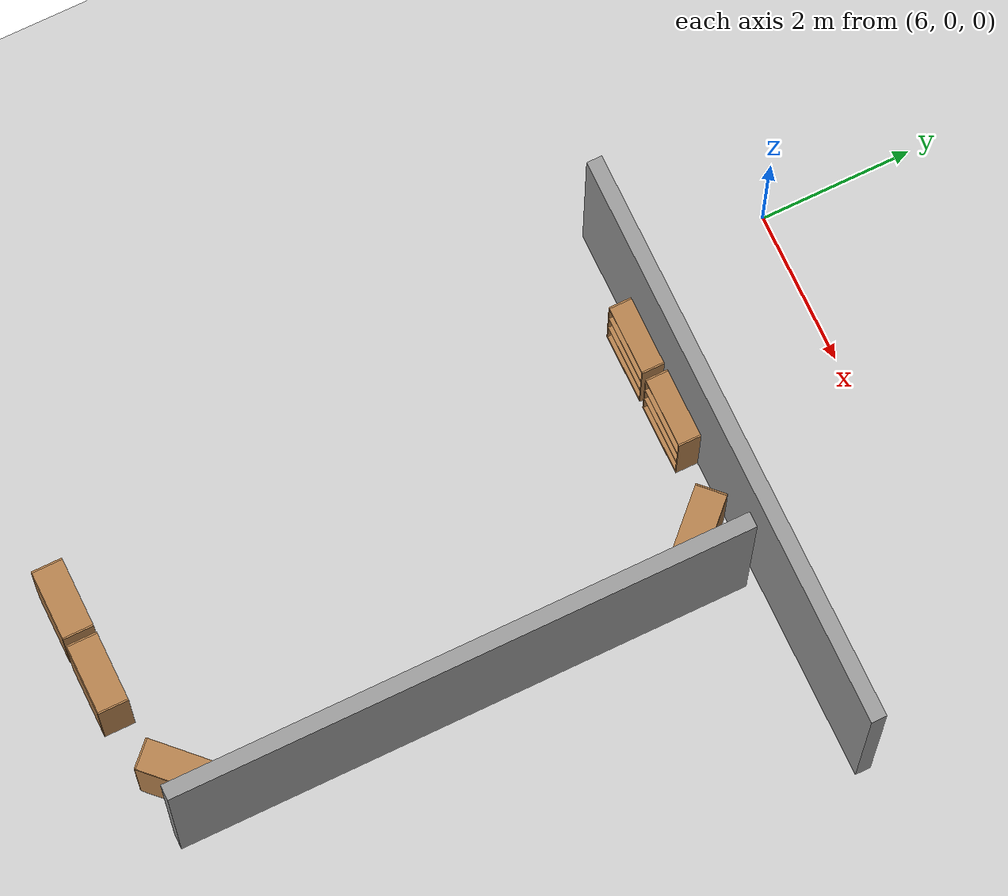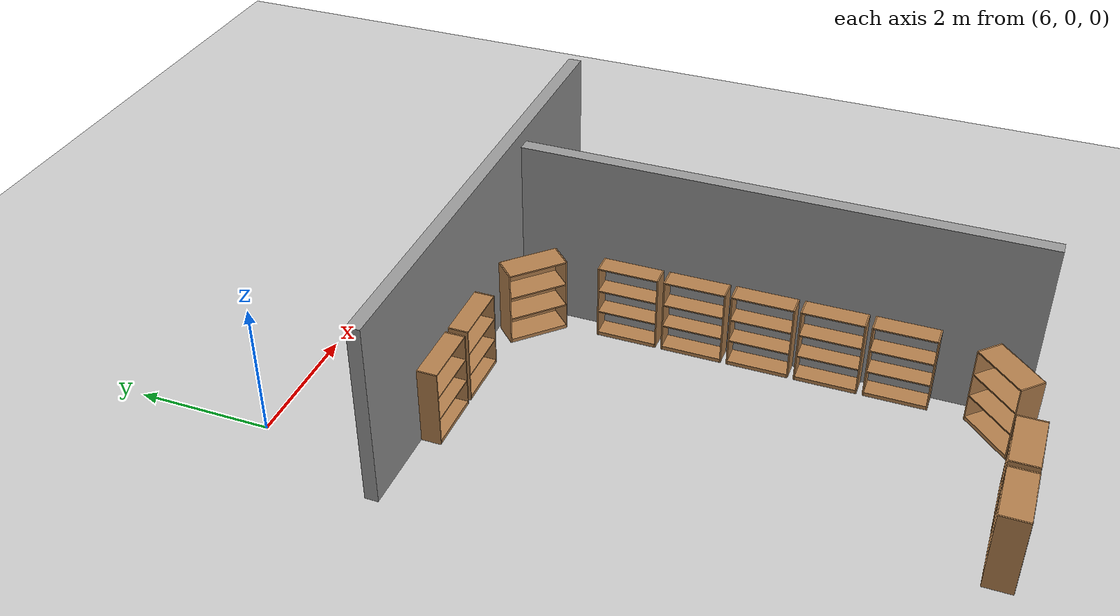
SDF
<sdf version="1.4">
 <world name="default">
  <model name="ground_plane">
   <static>1</static>
   <link name="link">
    <collision name="collision">
     <geometry><plane><normal>0 0 1</normal><size>100 100</size></plane></geometry>
     <surface><friction><ode><mu>100</mu><mu2>50</mu2></ode></friction></surface>
    </collision>
    <visual name="visual">
     <cast_shadows>0</cast_shadows>
     <geometry><plane><normal>0 0 1</normal><size>100 100</size></plane></geometry>
     <material>
      <script><uri>file://media/materials/scripts/gazebo.material</uri><name>Gazebo/Grey</name></script>
     </material>
    </visual>
    <velocity_decay><linear>0</linear><angular>0</angular></velocity_decay>
   </link>
  </model>
  <model name="grey_wall_2">
   <static>1</static>
   <link name="link">
    <pose>0 0 1.4 0 -0 0</pose>
    <collision name="collision"><geometry><box><size>7.5 0.2 2.8</size></box></geometry></collision>
    <visual name="visual">
     <cast_shadows>0</cast_shadows>
     <geometry><box><size>7.5 0.2 2.8</size></box></geometry>
     <material>
      <script>
       <uri>model://grey_wall/materials/scripts</uri>
       <uri>model://grey_wall/materials/textures</uri>
       <name>vrc/grey_wall</name>
      </script>
     </material>
    </visual>
    <velocity_decay><linear>0</linear><angular>0</angular></velocity_decay>
   </link>
   <pose>9 -2 0 0 -0 0</pose>
  </model>
  <model name="grey_wall_3">
   <static>1</static>
   <link name="link">
    <pose>0 0 1.4 0 -0 0</pose>
    <collision name="collision"><geometry><box><size>7.5 0.2 2.8</size></box></geometry></collision>
    <visual name="visual">
     <cast_shadows>0</cast_shadows>
     <geometry><box><size>7.5 0.2 2.8</size></box></geometry>
     <material>
      <script>
       <uri>model://grey_wall/materials/scripts</uri>
       <uri>model://grey_wall/materials/textures</uri>
       <name>vrc/grey_wall</name>
      </script>
     </material>
    </visual>
    <velocity_decay><linear>0</linear><angular>0</angular></velocity_decay>
   </link>
   <pose>10 -6 0 0 0 -1.5708</pose>
  </model>
  <model name="bookshelf_4">
   <static>1</static>
   <link name="link">
    <inertial><mass>1</mass></inertial>
    <collision name="back">
     <pose>0 0.005 0.6 0 -0 0</pose>
     <geometry><box><size>0.9 0.01 1.2</size></box></geometry>
    </collision>
    <visual name="visual1">
     <pose>0 0.005 0.6 0 -0 0</pose>
     <geometry><box><size>0.9 0.01 1.2</size></box></geometry>
     <material>
      <script><uri>file://media/materials/scripts/gazebo.material</uri><name>Gazebo/Wood</name></script>
     </material>
    </visual>
    <collision name="left_side">
     <pose>0.45 -0.195 0.6 0 -0 0</pose>
     <geometry><box><size>0.02 0.4 1.2</size></box></geometry>
    </collision>
    <visual name="visual2">
     <pose>0.45 -0.195 0.6 0 -0 0</pose>
     <geometry><box><size>0.02 0.4 1.2</size></box></geometry>
     <material>
      <script><uri>file://media/materials/scripts/gazebo.material</uri><name>Gazebo/Wood</name></script>
     </material>
    </visual>
    <collision name="right_side">
     <pose>-0.45 -0.195 0.6 0 -0 0</pose>
     <geometry><box><size>0.02 0.4 1.2</size></box></geometry>
    </collision>
    <visual name="visual3">
     <pose>-0.45 -0.195 0.6 0 -0 0</pose>
     <geometry><box><size>0.02 0.4 1.2</size></box></geometry>
     <material>
      <script><uri>file://media/materials/scripts/gazebo.material</uri><name>Gazebo/Wood</name></script>
     </material>
    </visual>
    <collision name="bottom">
     <pose>0 -0.195 0.03 0 -0 0</pose>
     <geometry><box><size>0.88 0.4 0.06</size></box></geometry>
    </collision>
    <visual name="visual4">
     <pose>0 -0.195 0.03 0 -0 0</pose>
     <geometry><box><size>0.88 0.4 0.06</size></box></geometry>
     <material>
      <script><uri>file://media/materials/scripts/gazebo.material</uri><name>Gazebo/Wood</name></script>
     </material>
    </visual>
    <collision name="top">
     <pose>0 -0.195 1.19 0 -0 0</pose>
     <geometry><box><size>0.88 0.4 0.02</size></box></geometry>
    </collision>
    <visual name="visual5">
     <pose>0 -0.195 1.19 0 -0 0</pose>
     <geometry><box><size>0.88 0.4 0.02</size></box></geometry>
     <material>
      <script><uri>file://media/materials/scripts/gazebo.material</uri><name>Gazebo/Wood</name></script>
     </material>
    </visual>
    <collision name="low_shelf">
     <pose>0 -0.195 0.43 0 -0 0</pose>
     <geometry><box><size>0.88 0.4 0.02</size></box></geometry>
    </collision>
    <visual name="visual6">
     <pose>0 -0.195 0.43 0 -0 0</pose>
     <geometry><box><size>0.88 0.4 0.02</size></box></geometry>
     <material>
      <script><uri>file://media/materials/scripts/gazebo.material</uri><name>Gazebo/Wood</name></script>
     </material>
    </visual>
    <collision name="high_shelf">
     <pose>0 -0.195 0.8 0 -0 0</pose>
     <geometry><box><size>0.88 0.4 0.02</size></box></geometry>
    </collision>
    <visual name="visual7">
     <pose>0 -0.195 0.8 0 -0 0</pose>
     <geometry><box><size>0.88 0.4 0.02</size></box></geometry>
     <material>
      <script><uri>file://media/materials/scripts/gazebo.material</uri><name>Gazebo/Wood</name></script>
     </material>
    </visual>
    <velocity_decay><linear>0</linear><angular>0</angular></velocity_decay>
   </link>
   <pose>9.55807 -9.56504 0 0 0 -2.35619</pose>
  </model>
  <model name="bookshelf_5">
   <static>1</static>
   <link name="link">
    <inertial><mass>1</mass></inertial>
    <collision name="back">
     <pose>0 0.005 0.6 0 -0 0</pose>
     <geometry><box><size>0.9 0.01 1.2</size></box></geometry>
    </collision>
    <visual name="visual1">
     <pose>0 0.005 0.6 0 -0 0</pose>
     <geometry><box><size>0.9 0.01 1.2</size></box></geometry>
     <material>
      <script><uri>file://media/materials/scripts/gazebo.material</uri><name>Gazebo/Wood</name></script>
     </material>
    </visual>
    <collision name="left_side">
     <pose>0.45 -0.195 0.6 0 -0 0</pose>
     <geometry><box><size>0.02 0.4 1.2</size></box></geometry>
    </collision>
    <visual name="visual2">
     <pose>0.45 -0.195 0.6 0 -0 0</pose>
     <geometry><box><size>0.02 0.4 1.2</size></box></geometry>
     <material>
      <script><uri>file://media/materials/scripts/gazebo.material</uri><name>Gazebo/Wood</name></script>
     </material>
    </visual>
    <collision name="right_side">
     <pose>-0.45 -0.195 0.6 0 -0 0</pose>
     <geometry><box><size>0.02 0.4 1.2</size></box></geometry>
    </collision>
    <visual name="visual3">
     <pose>-0.45 -0.195 0.6 0 -0 0</pose>
     <geometry><box><size>0.02 0.4 1.2</size></box></geometry>
     <material>
      <script><uri>file://media/materials/scripts/gazebo.material</uri><name>Gazebo/Wood</name></script>
     </material>
    </visual>
    <collision name="bottom">
     <pose>0 -0.195 0.03 0 -0 0</pose>
     <geometry><box><size>0.88 0.4 0.06</size></box></geometry>
    </collision>
    <visual name="visual4">
     <pose>0 -0.195 0.03 0 -0 0</pose>
     <geometry><box><size>0.88 0.4 0.06</size></box></geometry>
     <material>
      <script><uri>file://media/materials/scripts/gazebo.material</uri><name>Gazebo/Wood</name></script>
     </material>
    </visual>
    <collision name="top">
     <pose>0 -0.195 1.19 0 -0 0</pose>
     <geometry><box><size>0.88 0.4 0.02</size></box></geometry>
    </collision>
    <visual name="visual5">
     <pose>0 -0.195 1.19 0 -0 0</pose>
     <geometry><box><size>0.88 0.4 0.02</size></box></geometry>
     <material>
      <script><uri>file://media/materials/scripts/gazebo.material</uri><name>Gazebo/Wood</name></script>
     </material>
    </visual>
    <collision name="low_shelf">
     <pose>0 -0.195 0.43 0 -0 0</pose>
     <geometry><box><size>0.88 0.4 0.02</size></box></geometry>
    </collision>
    <visual name="visual6">
     <pose>0 -0.195 0.43 0 -0 0</pose>
     <geometry><box><size>0.88 0.4 0.02</size></box></geometry>
     <material>
      <script><uri>file://media/materials/scripts/gazebo.material</uri><name>Gazebo/Wood</name></script>
     </material>
    </visual>
    <collision name="high_shelf">
     <pose>0 -0.195 0.8 0 -0 0</pose>
     <geometry><box><size>0.88 0.4 0.02</size></box></geometry>
    </collision>
    <visual name="visual7">
     <pose>0 -0.195 0.8 0 -0 0</pose>
     <geometry><box><size>0.88 0.4 0.02</size></box></geometry>
     <material>
      <script><uri>file://media/materials/scripts/gazebo.material</uri><name>Gazebo/Wood</name></script>
     </material>
    </visual>
    <velocity_decay><linear>0</linear><angular>0</angular></velocity_decay>
   </link>
   <pose>7 -10 0 0 -0 3.14159</pose>
  </model>
  <model name="bookshelf_6">
   <static>1</static>
   <link name="link">
    <inertial><mass>1</mass></inertial>
    <collision name="back">
     <pose>0 0.005 0.6 0 -0 0</pose>
     <geometry><box><size>0.9 0.01 1.2</size></box></geometry>
    </collision>
    <visual name="visual1">
     <pose>0 0.005 0.6 0 -0 0</pose>
     <geometry><box><size>0.9 0.01 1.2</size></box></geometry>
     <material>
      <script><uri>file://media/materials/scripts/gazebo.material</uri><name>Gazebo/Wood</name></script>
     </material>
    </visual>
    <collision name="left_side">
     <pose>0.45 -0.195 0.6 0 -0 0</pose>
     <geometry><box><size>0.02 0.4 1.2</size></box></geometry>
    </collision>
    <visual name="visual2">
     <pose>0.45 -0.195 0.6 0 -0 0</pose>
     <geometry><box><size>0.02 0.4 1.2</size></box></geometry>
     <material>
      <script><uri>file://media/materials/scripts/gazebo.material</uri><name>Gazebo/Wood</name></script>
     </material>
    </visual>
    <collision name="right_side">
     <pose>-0.45 -0.195 0.6 0 -0 0</pose>
     <geometry><box><size>0.02 0.4 1.2</size></box></geometry>
    </collision>
    <visual name="visual3">
     <pose>-0.45 -0.195 0.6 0 -0 0</pose>
     <geometry><box><size>0.02 0.4 1.2</size></box></geometry>
     <material>
      <script><uri>file://media/materials/scripts/gazebo.material</uri><name>Gazebo/Wood</name></script>
     </material>
    </visual>
    <collision name="bottom">
     <pose>0 -0.195 0.03 0 -0 0</pose>
     <geometry><box><size>0.88 0.4 0.06</size></box></geometry>
    </collision>
    <visual name="visual4">
     <pose>0 -0.195 0.03 0 -0 0</pose>
     <geometry><box><size>0.88 0.4 0.06</size></box></geometry>
     <material>
      <script><uri>file://media/materials/scripts/gazebo.material</uri><name>Gazebo/Wood</name></script>
     </material>
    </visual>
    <collision name="top">
     <pose>0 -0.195 1.19 0 -0 0</pose>
     <geometry><box><size>0.88 0.4 0.02</size></box></geometry>
    </collision>
    <visual name="visual5">
     <pose>0 -0.195 1.19 0 -0 0</pose>
     <geometry><box><size>0.88 0.4 0.02</size></box></geometry>
     <material>
      <script><uri>file://media/materials/scripts/gazebo.material</uri><name>Gazebo/Wood</name></script>
     </material>
    </visual>
    <collision name="low_shelf">
     <pose>0 -0.195 0.43 0 -0 0</pose>
     <geometry><box><size>0.88 0.4 0.02</size></box></geometry>
    </collision>
    <visual name="visual6">
     <pose>0 -0.195 0.43 0 -0 0</pose>
     <geometry><box><size>0.88 0.4 0.02</size></box></geometry>
     <material>
      <script><uri>file://media/materials/scripts/gazebo.material</uri><name>Gazebo/Wood</name></script>
     </material>
    </visual>
    <collision name="high_shelf">
     <pose>0 -0.195 0.8 0 -0 0</pose>
     <geometry><box><size>0.88 0.4 0.02</size></box></geometry>
    </collision>
    <visual name="visual7">
     <pose>0 -0.195 0.8 0 -0 0</pose>
     <geometry><box><size>0.88 0.4 0.02</size></box></geometry>
     <material>
      <script><uri>file://media/materials/scripts/gazebo.material</uri><name>Gazebo/Wood</name></script>
     </material>
    </visual>
    <velocity_decay><linear>0</linear><angular>0</angular></velocity_decay>
   </link>
   <pose>8 -10 0 0 -0 3.14159</pose>
  </model>
  <model name="bookshelf_7">
   <static>1</static>
   <link name="link">
    <inertial><mass>1</mass></inertial>
    <collision name="back">
     <pose>0 0.005 0.6 0 -0 0</pose>
     <geometry><box><size>0.9 0.01 1.2</size></box></geometry>
    </collision>
    <visual name="visual1">
     <pose>0 0.005 0.6 0 -0 0</pose>
     <geometry><box><size>0.9 0.01 1.2</size></box></geometry>
     <material>
      <script><uri>file://media/materials/scripts/gazebo.material</uri><name>Gazebo/Wood</name></script>
     </material>
    </visual>
    <collision name="left_side">
     <pose>0.45 -0.195 0.6 0 -0 0</pose>
     <geometry><box><size>0.02 0.4 1.2</size></box></geometry>
    </collision>
    <visual name="visual2">
     <pose>0.45 -0.195 0.6 0 -0 0</pose>
     <geometry><box><size>0.02 0.4 1.2</size></box></geometry>
     <material>
      <script><uri>file://media/materials/scripts/gazebo.material</uri><name>Gazebo/Wood</name></script>
     </material>
    </visual>
    <collision name="right_side">
     <pose>-0.45 -0.195 0.6 0 -0 0</pose>
     <geometry><box><size>0.02 0.4 1.2</size></box></geometry>
    </collision>
    <visual name="visual3">
     <pose>-0.45 -0.195 0.6 0 -0 0</pose>
     <geometry><box><size>0.02 0.4 1.2</size></box></geometry>
     <material>
      <script><uri>file://media/materials/scripts/gazebo.material</uri><name>Gazebo/Wood</name></script>
     </material>
    </visual>
    <collision name="bottom">
     <pose>0 -0.195 0.03 0 -0 0</pose>
     <geometry><box><size>0.88 0.4 0.06</size></box></geometry>
    </collision>
    <visual name="visual4">
     <pose>0 -0.195 0.03 0 -0 0</pose>
     <geometry><box><size>0.88 0.4 0.06</size></box></geometry>
     <material>
      <script><uri>file://media/materials/scripts/gazebo.material</uri><name>Gazebo/Wood</name></script>
     </material>
    </visual>
    <collision name="top">
     <pose>0 -0.195 1.19 0 -0 0</pose>
     <geometry><box><size>0.88 0.4 0.02</size></box></geometry>
    </collision>
    <visual name="visual5">
     <pose>0 -0.195 1.19 0 -0 0</pose>
     <geometry><box><size>0.88 0.4 0.02</size></box></geometry>
     <material>
      <script><uri>file://media/materials/scripts/gazebo.material</uri><name>Gazebo/Wood</name></script>
     </material>
    </visual>
    <collision name="low_shelf">
     <pose>0 -0.195 0.43 0 -0 0</pose>
     <geometry><box><size>0.88 0.4 0.02</size></box></geometry>
    </collision>
    <visual name="visual6">
     <pose>0 -0.195 0.43 0 -0 0</pose>
     <geometry><box><size>0.88 0.4 0.02</size></box></geometry>
     <material>
      <script><uri>file://media/materials/scripts/gazebo.material</uri><name>Gazebo/Wood</name></script>
     </material>
    </visual>
    <collision name="high_shelf">
     <pose>0 -0.195 0.8 0 -0 0</pose>
     <geometry><box><size>0.88 0.4 0.02</size></box></geometry>
    </collision>
    <visual name="visual7">
     <pose>0 -0.195 0.8 0 -0 0</pose>
     <geometry><box><size>0.88 0.4 0.02</size></box></geometry>
     <material>
      <script><uri>file://media/materials/scripts/gazebo.material</uri><name>Gazebo/Wood</name></script>
     </material>
    </visual>
    <velocity_decay><linear>0</linear><angular>0</angular></velocity_decay>
   </link>
   <pose>7 -2 0 0 -0 0</pose>
  </model>
  <model name="bookshelf_8">
   <static>1</static>
   <link name="link">
    <inertial><mass>1</mass></inertial>
    <collision name="back">
     <pose>0 0.005 0.6 0 -0 0</pose>
     <geometry><box><size>0.9 0.01 1.2</size></box></geometry>
    </collision>
    <visual name="visual1">
     <pose>0 0.005 0.6 0 -0 0</pose>
     <geometry><box><size>0.9 0.01 1.2</size></box></geometry>
     <material>
      <script><uri>file://media/materials/scripts/gazebo.material</uri><name>Gazebo/Wood</name></script>
     </material>
    </visual>
    <collision name="left_side">
     <pose>0.45 -0.195 0.6 0 -0 0</pose>
     <geometry><box><size>0.02 0.4 1.2</size></box></geometry>
    </collision>
    <visual name="visual2">
     <pose>0.45 -0.195 0.6 0 -0 0</pose>
     <geometry><box><size>0.02 0.4 1.2</size></box></geometry>
     <material>
      <script><uri>file://media/materials/scripts/gazebo.material</uri><name>Gazebo/Wood</name></script>
     </material>
    </visual>
    <collision name="right_side">
     <pose>-0.45 -0.195 0.6 0 -0 0</pose>
     <geometry><box><size>0.02 0.4 1.2</size></box></geometry>
    </collision>
    <visual name="visual3">
     <pose>-0.45 -0.195 0.6 0 -0 0</pose>
     <geometry><box><size>0.02 0.4 1.2</size></box></geometry>
     <material>
      <script><uri>file://media/materials/scripts/gazebo.material</uri><name>Gazebo/Wood</name></script>
     </material>
    </visual>
    <collision name="bottom">
     <pose>0 -0.195 0.03 0 -0 0</pose>
     <geometry><box><size>0.88 0.4 0.06</size></box></geometry>
    </collision>
    <visual name="visual4">
     <pose>0 -0.195 0.03 0 -0 0</pose>
     <geometry><box><size>0.88 0.4 0.06</size></box></geometry>
     <material>
      <script><uri>file://media/materials/scripts/gazebo.material</uri><name>Gazebo/Wood</name></script>
     </material>
    </visual>
    <collision name="top">
     <pose>0 -0.195 1.19 0 -0 0</pose>
     <geometry><box><size>0.88 0.4 0.02</size></box></geometry>
    </collision>
    <visual name="visual5">
     <pose>0 -0.195 1.19 0 -0 0</pose>
     <geometry><box><size>0.88 0.4 0.02</size></box></geometry>
     <material>
      <script><uri>file://media/materials/scripts/gazebo.material</uri><name>Gazebo/Wood</name></script>
     </material>
    </visual>
    <collision name="low_shelf">
     <pose>0 -0.195 0.43 0 -0 0</pose>
     <geometry><box><size>0.88 0.4 0.02</size></box></geometry>
    </collision>
    <visual name="visual6">
     <pose>0 -0.195 0.43 0 -0 0</pose>
     <geometry><box><size>0.88 0.4 0.02</size></box></geometry>
     <material>
      <script><uri>file://media/materials/scripts/gazebo.material</uri><name>Gazebo/Wood</name></script>
     </material>
    </visual>
    <collision name="high_shelf">
     <pose>0 -0.195 0.8 0 -0 0</pose>
     <geometry><box><size>0.88 0.4 0.02</size></box></geometry>
    </collision>
    <visual name="visual7">
     <pose>0 -0.195 0.8 0 -0 0</pose>
     <geometry><box><size>0.88 0.4 0.02</size></box></geometry>
     <material>
      <script><uri>file://media/materials/scripts/gazebo.material</uri><name>Gazebo/Wood</name></script>
     </material>
    </visual>
    <velocity_decay><linear>0</linear><angular>0</angular></velocity_decay>
   </link>
   <pose>8 -2 0 0 -0 0</pose>
  </model>
  <model name="bookshelf_9">
   <static>1</static>
   <link name="link">
    <inertial><mass>1</mass></inertial>
    <collision name="back">
     <pose>0 0.005 0.6 0 -0 0</pose>
     <geometry><box><size>0.9 0.01 1.2</size></box></geometry>
    </collision>
    <visual name="visual1">
     <pose>0 0.005 0.6 0 -0 0</pose>
     <geometry><box><size>0.9 0.01 1.2</size></box></geometry>
     <material>
      <script><uri>file://media/materials/scripts/gazebo.material</uri><name>Gazebo/Wood</name></script>
     </material>
    </visual>
    <collision name="left_side">
     <pose>0.45 -0.195 0.6 0 -0 0</pose>
     <geometry><box><size>0.02 0.4 1.2</size></box></geometry>
    </collision>
    <visual name="visual2">
     <pose>0.45 -0.195 0.6 0 -0 0</pose>
     <geometry><box><size>0.02 0.4 1.2</size></box></geometry>
     <material>
      <script><uri>file://media/materials/scripts/gazebo.material</uri><name>Gazebo/Wood</name></script>
     </material>
    </visual>
    <collision name="right_side">
     <pose>-0.45 -0.195 0.6 0 -0 0</pose>
     <geometry><box><size>0.02 0.4 1.2</size></box></geometry>
    </collision>
    <visual name="visual3">
     <pose>-0.45 -0.195 0.6 0 -0 0</pose>
     <geometry><box><size>0.02 0.4 1.2</size></box></geometry>
     <material>
      <script><uri>file://media/materials/scripts/gazebo.material</uri><name>Gazebo/Wood</name></script>
     </material>
    </visual>
    <collision name="bottom">
     <pose>0 -0.195 0.03 0 -0 0</pose>
     <geometry><box><size>0.88 0.4 0.06</size></box></geometry>
    </collision>
    <visual name="visual4">
     <pose>0 -0.195 0.03 0 -0 0</pose>
     <geometry><box><size>0.88 0.4 0.06</size></box></geometry>
     <material>
      <script><uri>file://media/materials/scripts/gazebo.material</uri><name>Gazebo/Wood</name></script>
     </material>
    </visual>
    <collision name="top">
     <pose>0 -0.195 1.19 0 -0 0</pose>
     <geometry><box><size>0.88 0.4 0.02</size></box></geometry>
    </collision>
    <visual name="visual5">
     <pose>0 -0.195 1.19 0 -0 0</pose>
     <geometry><box><size>0.88 0.4 0.02</size></box></geometry>
     <material>
      <script><uri>file://media/materials/scripts/gazebo.material</uri><name>Gazebo/Wood</name></script>
     </material>
    </visual>
    <collision name="low_shelf">
     <pose>0 -0.195 0.43 0 -0 0</pose>
     <geometry><box><size>0.88 0.4 0.02</size></box></geometry>
    </collision>
    <visual name="visual6">
     <pose>0 -0.195 0.43 0 -0 0</pose>
     <geometry><box><size>0.88 0.4 0.02</size></box></geometry>
     <material>
      <script><uri>file://media/materials/scripts/gazebo.material</uri><name>Gazebo/Wood</name></script>
     </material>
    </visual>
    <collision name="high_shelf">
     <pose>0 -0.195 0.8 0 -0 0</pose>
     <geometry><box><size>0.88 0.4 0.02</size></box></geometry>
    </collision>
    <visual name="visual7">
     <pose>0 -0.195 0.8 0 -0 0</pose>
     <geometry><box><size>0.88 0.4 0.02</size></box></geometry>
     <material>
      <script><uri>file://media/materials/scripts/gazebo.material</uri><name>Gazebo/Wood</name></script>
     </material>
    </visual>
    <velocity_decay><linear>0</linear><angular>0</angular></velocity_decay>
   </link>
   <pose>9.56042 -2.46075 0 0 0 -0.785398</pose>
  </model>
  <model name="bookshelf_10">
   <static>1</static>
   <link name="link">
    <inertial><mass>1</mass></inertial>
    <collision name="back">
     <pose>0 0.005 0.6 0 -0 0</pose>
     <geometry><box><size>0.9 0.01 1.2</size></box></geometry>
    </collision>
    <visual name="visual1">
     <pose>0 0.005 0.6 0 -0 0</pose>
     <geometry><box><size>0.9 0.01 1.2</size></box></geometry>
     <material>
      <script><uri>file://media/materials/scripts/gazebo.material</uri><name>Gazebo/Wood</name></script>
     </material>
    </visual>
    <collision name="left_side">
     <pose>0.45 -0.195 0.6 0 -0 0</pose>
     <geometry><box><size>0.02 0.4 1.2</size></box></geometry>
    </collision>
    <visual name="visual2">
     <pose>0.45 -0.195 0.6 0 -0 0</pose>
     <geometry><box><size>0.02 0.4 1.2</size></box></geometry>
     <material>
      <script><uri>file://media/materials/scripts/gazebo.material</uri><name>Gazebo/Wood</name></script>
     </material>
    </visual>
    <collision name="right_side">
     <pose>-0.45 -0.195 0.6 0 -0 0</pose>
     <geometry><box><size>0.02 0.4 1.2</size></box></geometry>
    </collision>
    <visual name="visual3">
     <pose>-0.45 -0.195 0.6 0 -0 0</pose>
     <geometry><box><size>0.02 0.4 1.2</size></box></geometry>
     <material>
      <script><uri>file://media/materials/scripts/gazebo.material</uri><name>Gazebo/Wood</name></script>
     </material>
    </visual>
    <collision name="bottom">
     <pose>0 -0.195 0.03 0 -0 0</pose>
     <geometry><box><size>0.88 0.4 0.06</size></box></geometry>
    </collision>
    <visual name="visual4">
     <pose>0 -0.195 0.03 0 -0 0</pose>
     <geometry><box><size>0.88 0.4 0.06</size></box></geometry>
     <material>
      <script><uri>file://media/materials/scripts/gazebo.material</uri><name>Gazebo/Wood</name></script>
     </material>
    </visual>
    <collision name="top">
     <pose>0 -0.195 1.19 0 -0 0</pose>
     <geometry><box><size>0.88 0.4 0.02</size></box></geometry>
    </collision>
    <visual name="visual5">
     <pose>0 -0.195 1.19 0 -0 0</pose>
     <geometry><box><size>0.88 0.4 0.02</size></box></geometry>
     <material>
      <script><uri>file://media/materials/scripts/gazebo.material</uri><name>Gazebo/Wood</name></script>
     </material>
    </visual>
    <collision name="low_shelf">
     <pose>0 -0.195 0.43 0 -0 0</pose>
     <geometry><box><size>0.88 0.4 0.02</size></box></geometry>
    </collision>
    <visual name="visual6">
     <pose>0 -0.195 0.43 0 -0 0</pose>
     <geometry><box><size>0.88 0.4 0.02</size></box></geometry>
     <material>
      <script><uri>file://media/materials/scripts/gazebo.material</uri><name>Gazebo/Wood</name></script>
     </material>
    </visual>
    <collision name="high_shelf">
     <pose>0 -0.195 0.8 0 -0 0</pose>
     <geometry><box><size>0.88 0.4 0.02</size></box></geometry>
    </collision>
    <visual name="visual7">
     <pose>0 -0.195 0.8 0 -0 0</pose>
     <geometry><box><size>0.88 0.4 0.02</size></box></geometry>
     <material>
      <script><uri>file://media/materials/scripts/gazebo.material</uri><name>Gazebo/Wood</name></script>
     </material>
    </visual>
    <velocity_decay><linear>0</linear><angular>0</angular></velocity_decay>
   </link>
   <pose>10 -4 0 0 0 -1.5708</pose>
  </model>
  <model name="bookshelf_11">
   <static>1</static>
   <link name="link">
    <inertial><mass>1</mass></inertial>
    <collision name="back">
     <pose>0 0.005 0.6 0 -0 0</pose>
     <geometry><box><size>0.9 0.01 1.2</size></box></geometry>
    </collision>
    <visual name="visual1">
     <pose>0 0.005 0.6 0 -0 0</pose>
     <geometry><box><size>0.9 0.01 1.2</size></box></geometry>
     <material>
      <script><uri>file://media/materials/scripts/gazebo.material</uri><name>Gazebo/Wood</name></script>
     </material>
    </visual>
    <collision name="left_side">
     <pose>0.45 -0.195 0.6 0 -0 0</pose>
     <geometry><box><size>0.02 0.4 1.2</size></box></geometry>
    </collision>
    <visual name="visual2">
     <pose>0.45 -0.195 0.6 0 -0 0</pose>
     <geometry><box><size>0.02 0.4 1.2</size></box></geometry>
     <material>
      <script><uri>file://media/materials/scripts/gazebo.material</uri><name>Gazebo/Wood</name></script>
     </material>
    </visual>
    <collision name="right_side">
     <pose>-0.45 -0.195 0.6 0 -0 0</pose>
     <geometry><box><size>0.02 0.4 1.2</size></box></geometry>
    </collision>
    <visual name="visual3">
     <pose>-0.45 -0.195 0.6 0 -0 0</pose>
     <geometry><box><size>0.02 0.4 1.2</size></box></geometry>
     <material>
      <script><uri>file://media/materials/scripts/gazebo.material</uri><name>Gazebo/Wood</name></script>
     </material>
    </visual>
    <collision name="bottom">
     <pose>0 -0.195 0.03 0 -0 0</pose>
     <geometry><box><size>0.88 0.4 0.06</size></box></geometry>
    </collision>
    <visual name="visual4">
     <pose>0 -0.195 0.03 0 -0 0</pose>
     <geometry><box><size>0.88 0.4 0.06</size></box></geometry>
     <material>
      <script><uri>file://media/materials/scripts/gazebo.material</uri><name>Gazebo/Wood</name></script>
     </material>
    </visual>
    <collision name="top">
     <pose>0 -0.195 1.19 0 -0 0</pose>
     <geometry><box><size>0.88 0.4 0.02</size></box></geometry>
    </collision>
    <visual name="visual5">
     <pose>0 -0.195 1.19 0 -0 0</pose>
     <geometry><box><size>0.88 0.4 0.02</size></box></geometry>
     <material>
      <script><uri>file://media/materials/scripts/gazebo.material</uri><name>Gazebo/Wood</name></script>
     </material>
    </visual>
    <collision name="low_shelf">
     <pose>0 -0.195 0.43 0 -0 0</pose>
     <geometry><box><size>0.88 0.4 0.02</size></box></geometry>
    </collision>
    <visual name="visual6">
     <pose>0 -0.195 0.43 0 -0 0</pose>
     <geometry><box><size>0.88 0.4 0.02</size></box></geometry>
     <material>
      <script><uri>file://media/materials/scripts/gazebo.material</uri><name>Gazebo/Wood</name></script>
     </material>
    </visual>
    <collision name="high_shelf">
     <pose>0 -0.195 0.8 0 -0 0</pose>
     <geometry><box><size>0.88 0.4 0.02</size></box></geometry>
    </collision>
    <visual name="visual7">
     <pose>0 -0.195 0.8 0 -0 0</pose>
     <geometry><box><size>0.88 0.4 0.02</size></box></geometry>
     <material>
      <script><uri>file://media/materials/scripts/gazebo.material</uri><name>Gazebo/Wood</name></script>
     </material>
    </visual>
    <velocity_decay><linear>0</linear><angular>0</angular></velocity_decay>
   </link>
   <pose>10 -5 0 0 0 -1.5708</pose>
  </model>
  <model name="bookshelf_12">
   <static>1</static>
   <link name="link">
    <inertial><mass>1</mass></inertial>
    <collision name="back">
     <pose>0 0.005 0.6 0 -0 0</pose>
     <geometry><box><size>0.9 0.01 1.2</size></box></geometry>
    </collision>
    <visual name="visual1">
     <pose>0 0.005 0.6 0 -0 0</pose>
     <geometry><box><size>0.9 0.01 1.2</size></box></geometry>
     <material>
      <script><uri>file://media/materials/scripts/gazebo.material</uri><name>Gazebo/Wood</name></script>
     </material>
    </visual>
    <collision name="left_side">
     <pose>0.45 -0.195 0.6 0 -0 0</pose>
     <geometry><box><size>0.02 0.4 1.2</size></box></geometry>
    </collision>
    <visual name="visual2">
     <pose>0.45 -0.195 0.6 0 -0 0</pose>
     <geometry><box><size>0.02 0.4 1.2</size></box></geometry>
     <material>
      <script><uri>file://media/materials/scripts/gazebo.material</uri><name>Gazebo/Wood</name></script>
     </material>
    </visual>
    <collision name="right_side">
     <pose>-0.45 -0.195 0.6 0 -0 0</pose>
     <geometry><box><size>0.02 0.4 1.2</size></box></geometry>
    </collision>
    <visual name="visual3">
     <pose>-0.45 -0.195 0.6 0 -0 0</pose>
     <geometry><box><size>0.02 0.4 1.2</size></box></geometry>
     <material>
      <script><uri>file://media/materials/scripts/gazebo.material</uri><name>Gazebo/Wood</name></script>
     </material>
    </visual>
    <collision name="bottom">
     <pose>0 -0.195 0.03 0 -0 0</pose>
     <geometry><box><size>0.88 0.4 0.06</size></box></geometry>
    </collision>
    <visual name="visual4">
     <pose>0 -0.195 0.03 0 -0 0</pose>
     <geometry><box><size>0.88 0.4 0.06</size></box></geometry>
     <material>
      <script><uri>file://media/materials/scripts/gazebo.material</uri><name>Gazebo/Wood</name></script>
     </material>
    </visual>
    <collision name="top">
     <pose>0 -0.195 1.19 0 -0 0</pose>
     <geometry><box><size>0.88 0.4 0.02</size></box></geometry>
    </collision>
    <visual name="visual5">
     <pose>0 -0.195 1.19 0 -0 0</pose>
     <geometry><box><size>0.88 0.4 0.02</size></box></geometry>
     <material>
      <script><uri>file://media/materials/scripts/gazebo.material</uri><name>Gazebo/Wood</name></script>
     </material>
    </visual>
    <collision name="low_shelf">
     <pose>0 -0.195 0.43 0 -0 0</pose>
     <geometry><box><size>0.88 0.4 0.02</size></box></geometry>
    </collision>
    <visual name="visual6">
     <pose>0 -0.195 0.43 0 -0 0</pose>
     <geometry><box><size>0.88 0.4 0.02</size></box></geometry>
     <material>
      <script><uri>file://media/materials/scripts/gazebo.material</uri><name>Gazebo/Wood</name></script>
     </material>
    </visual>
    <collision name="high_shelf">
     <pose>0 -0.195 0.8 0 -0 0</pose>
     <geometry><box><size>0.88 0.4 0.02</size></box></geometry>
    </collision>
    <visual name="visual7">
     <pose>0 -0.195 0.8 0 -0 0</pose>
     <geometry><box><size>0.88 0.4 0.02</size></box></geometry>
     <material>
      <script><uri>file://media/materials/scripts/gazebo.material</uri><name>Gazebo/Wood</name></script>
     </material>
    </visual>
    <velocity_decay><linear>0</linear><angular>0</angular></velocity_decay>
   </link>
   <pose>10 -6 0 0 0 -1.5708</pose>
  </model>
  <model name="bookshelf_13">
   <static>1</static>
   <link name="link">
    <inertial><mass>1</mass></inertial>
    <collision name="back">
     <pose>0 0.005 0.6 0 -0 0</pose>
     <geometry><box><size>0.9 0.01 1.2</size></box></geometry>
    </collision>
    <visual name="visual1">
     <pose>0 0.005 0.6 0 -0 0</pose>
     <geometry><box><size>0.9 0.01 1.2</size></box></geometry>
     <material>
      <script><uri>file://media/materials/scripts/gazebo.material</uri><name>Gazebo/Wood</name></script>
     </material>
    </visual>
    <collision name="left_side">
     <pose>0.45 -0.195 0.6 0 -0 0</pose>
     <geometry><box><size>0.02 0.4 1.2</size></box></geometry>
    </collision>
    <visual name="visual2">
     <pose>0.45 -0.195 0.6 0 -0 0</pose>
     <geometry><box><size>0.02 0.4 1.2</size></box></geometry>
     <material>
      <script><uri>file://media/materials/scripts/gazebo.material</uri><name>Gazebo/Wood</name></script>
     </material>
    </visual>
    <collision name="right_side">
     <pose>-0.45 -0.195 0.6 0 -0 0</pose>
     <geometry><box><size>0.02 0.4 1.2</size></box></geometry>
    </collision>
    <visual name="visual3">
     <pose>-0.45 -0.195 0.6 0 -0 0</pose>
     <geometry><box><size>0.02 0.4 1.2</size></box></geometry>
     <material>
      <script><uri>file://media/materials/scripts/gazebo.material</uri><name>Gazebo/Wood</name></script>
     </material>
    </visual>
    <collision name="bottom">
     <pose>0 -0.195 0.03 0 -0 0</pose>
     <geometry><box><size>0.88 0.4 0.06</size></box></geometry>
    </collision>
    <visual name="visual4">
     <pose>0 -0.195 0.03 0 -0 0</pose>
     <geometry><box><size>0.88 0.4 0.06</size></box></geometry>
     <material>
      <script><uri>file://media/materials/scripts/gazebo.material</uri><name>Gazebo/Wood</name></script>
     </material>
    </visual>
    <collision name="top">
     <pose>0 -0.195 1.19 0 -0 0</pose>
     <geometry><box><size>0.88 0.4 0.02</size></box></geometry>
    </collision>
    <visual name="visual5">
     <pose>0 -0.195 1.19 0 -0 0</pose>
     <geometry><box><size>0.88 0.4 0.02</size></box></geometry>
     <material>
      <script><uri>file://media/materials/scripts/gazebo.material</uri><name>Gazebo/Wood</name></script>
     </material>
    </visual>
    <collision name="low_shelf">
     <pose>0 -0.195 0.43 0 -0 0</pose>
     <geometry><box><size>0.88 0.4 0.02</size></box></geometry>
    </collision>
    <visual name="visual6">
     <pose>0 -0.195 0.43 0 -0 0</pose>
     <geometry><box><size>0.88 0.4 0.02</size></box></geometry>
     <material>
      <script><uri>file://media/materials/scripts/gazebo.material</uri><name>Gazebo/Wood</name></script>
     </material>
    </visual>
    <collision name="high_shelf">
     <pose>0 -0.195 0.8 0 -0 0</pose>
     <geometry><box><size>0.88 0.4 0.02</size></box></geometry>
    </collision>
    <visual name="visual7">
     <pose>0 -0.195 0.8 0 -0 0</pose>
     <geometry><box><size>0.88 0.4 0.02</size></box></geometry>
     <material>
      <script><uri>file://media/materials/scripts/gazebo.material</uri><name>Gazebo/Wood</name></script>
     </material>
    </visual>
    <velocity_decay><linear>0</linear><angular>0</angular></velocity_decay>
   </link>
   <pose>10 -7 0 0 0 -1.5708</pose>
  </model>
  <model name="bookshelf_14">
   <static>1</static>
   <link name="link">
    <inertial><mass>1</mass></inertial>
    <collision name="back">
     <pose>0 0.005 0.6 0 -0 0</pose>
     <geometry><box><size>0.9 0.01 1.2</size></box></geometry>
    </collision>
    <visual name="visual1">
     <pose>0 0.005 0.6 0 -0 0</pose>
     <geometry><box><size>0.9 0.01 1.2</size></box></geometry>
     <material>
      <script><uri>file://media/materials/scripts/gazebo.material</uri><name>Gazebo/Wood</name></script>
     </material>
    </visual>
    <collision name="left_side">
     <pose>0.45 -0.195 0.6 0 -0 0</pose>
     <geometry><box><size>0.02 0.4 1.2</size></box></geometry>
    </collision>
    <visual name="visual2">
     <pose>0.45 -0.195 0.6 0 -0 0</pose>
     <geometry><box><size>0.02 0.4 1.2</size></box></geometry>
     <material>
      <script><uri>file://media/materials/scripts/gazebo.material</uri><name>Gazebo/Wood</name></script>
     </material>
    </visual>
    <collision name="right_side">
     <pose>-0.45 -0.195 0.6 0 -0 0</pose>
     <geometry><box><size>0.02 0.4 1.2</size></box></geometry>
    </collision>
    <visual name="visual3">
     <pose>-0.45 -0.195 0.6 0 -0 0</pose>
     <geometry><box><size>0.02 0.4 1.2</size></box></geometry>
     <material>
      <script><uri>file://media/materials/scripts/gazebo.material</uri><name>Gazebo/Wood</name></script>
     </material>
    </visual>
    <collision name="bottom">
     <pose>0 -0.195 0.03 0 -0 0</pose>
     <geometry><box><size>0.88 0.4 0.06</size></box></geometry>
    </collision>
    <visual name="visual4">
     <pose>0 -0.195 0.03 0 -0 0</pose>
     <geometry><box><size>0.88 0.4 0.06</size></box></geometry>
     <material>
      <script><uri>file://media/materials/scripts/gazebo.material</uri><name>Gazebo/Wood</name></script>
     </material>
    </visual>
    <collision name="top">
     <pose>0 -0.195 1.19 0 -0 0</pose>
     <geometry><box><size>0.88 0.4 0.02</size></box></geometry>
    </collision>
    <visual name="visual5">
     <pose>0 -0.195 1.19 0 -0 0</pose>
     <geometry><box><size>0.88 0.4 0.02</size></box></geometry>
     <material>
      <script><uri>file://media/materials/scripts/gazebo.material</uri><name>Gazebo/Wood</name></script>
     </material>
    </visual>
    <collision name="low_shelf">
     <pose>0 -0.195 0.43 0 -0 0</pose>
     <geometry><box><size>0.88 0.4 0.02</size></box></geometry>
    </collision>
    <visual name="visual6">
     <pose>0 -0.195 0.43 0 -0 0</pose>
     <geometry><box><size>0.88 0.4 0.02</size></box></geometry>
     <material>
      <script><uri>file://media/materials/scripts/gazebo.material</uri><name>Gazebo/Wood</name></script>
     </material>
    </visual>
    <collision name="high_shelf">
     <pose>0 -0.195 0.8 0 -0 0</pose>
     <geometry><box><size>0.88 0.4 0.02</size></box></geometry>
    </collision>
    <visual name="visual7">
     <pose>0 -0.195 0.8 0 -0 0</pose>
     <geometry><box><size>0.88 0.4 0.02</size></box></geometry>
     <material>
      <script><uri>file://media/materials/scripts/gazebo.material</uri><name>Gazebo/Wood</name></script>
     </material>
    </visual>
    <velocity_decay><linear>0</linear><angular>0</angular></velocity_decay>
   </link>
   <pose>10 -8 0 0 0 -1.5708</pose>
  </model>
 </world>
</sdf>
